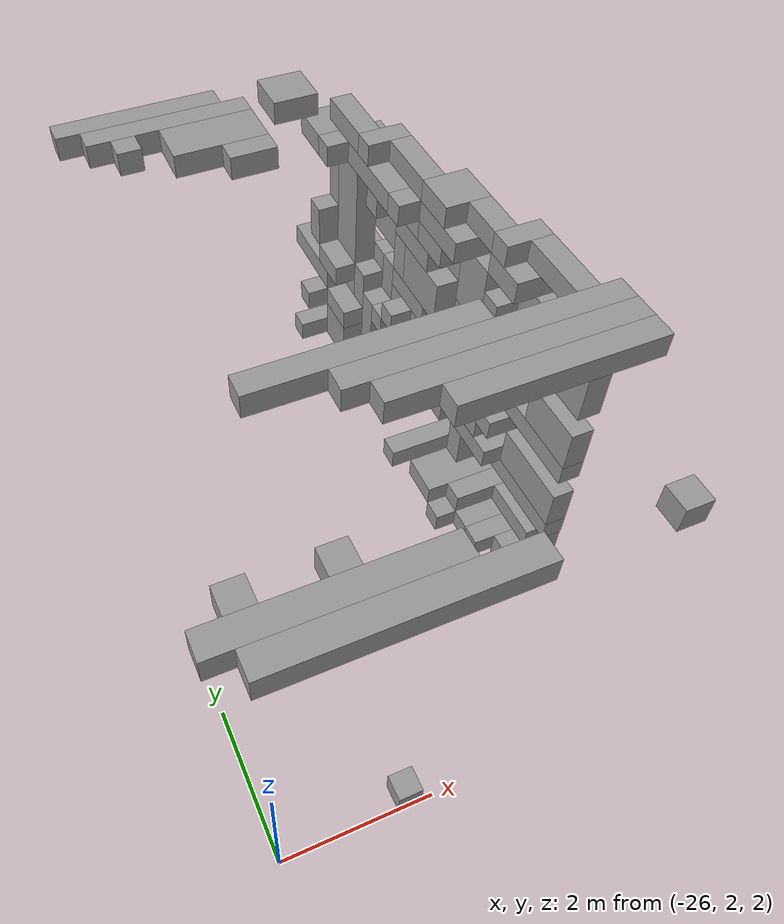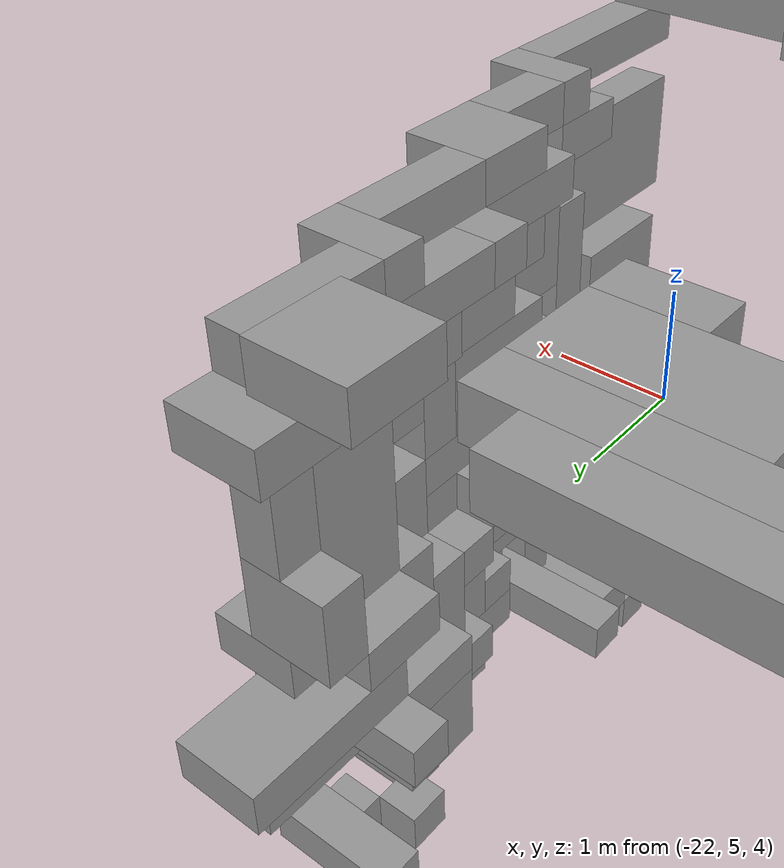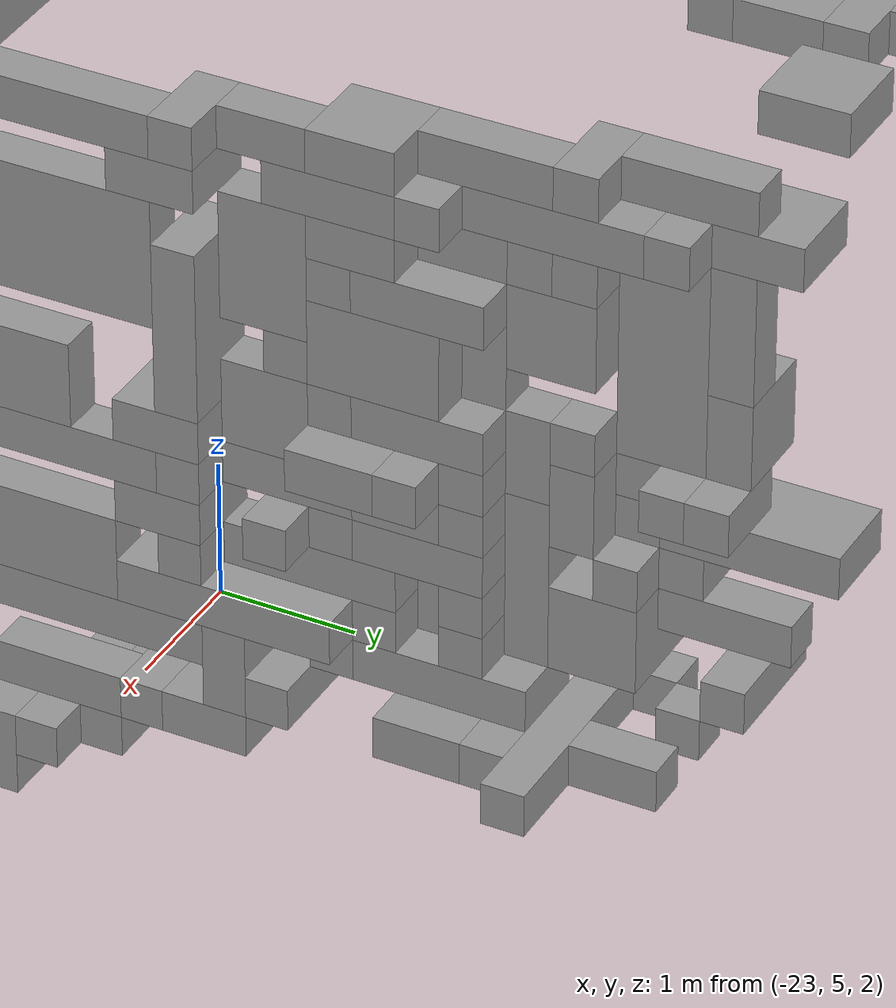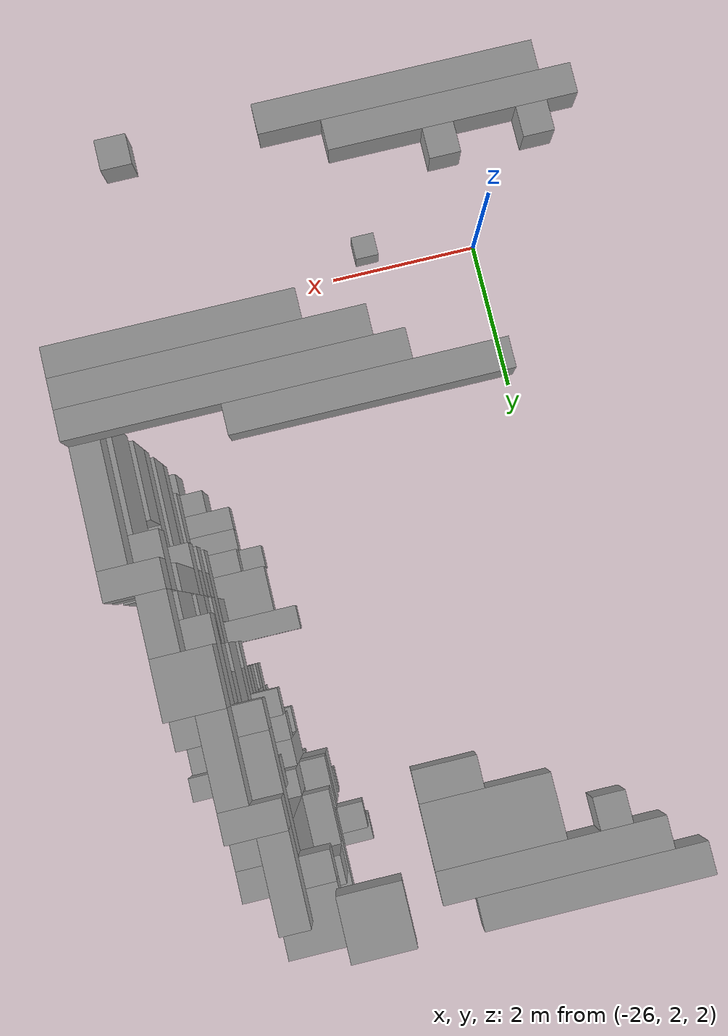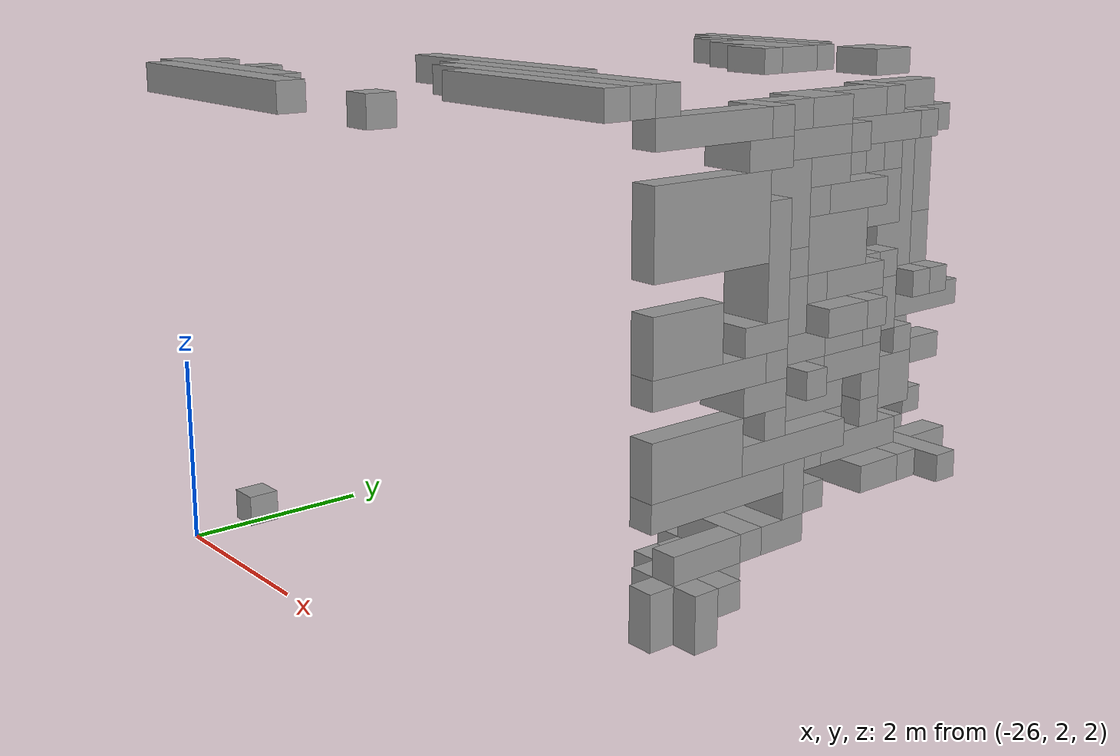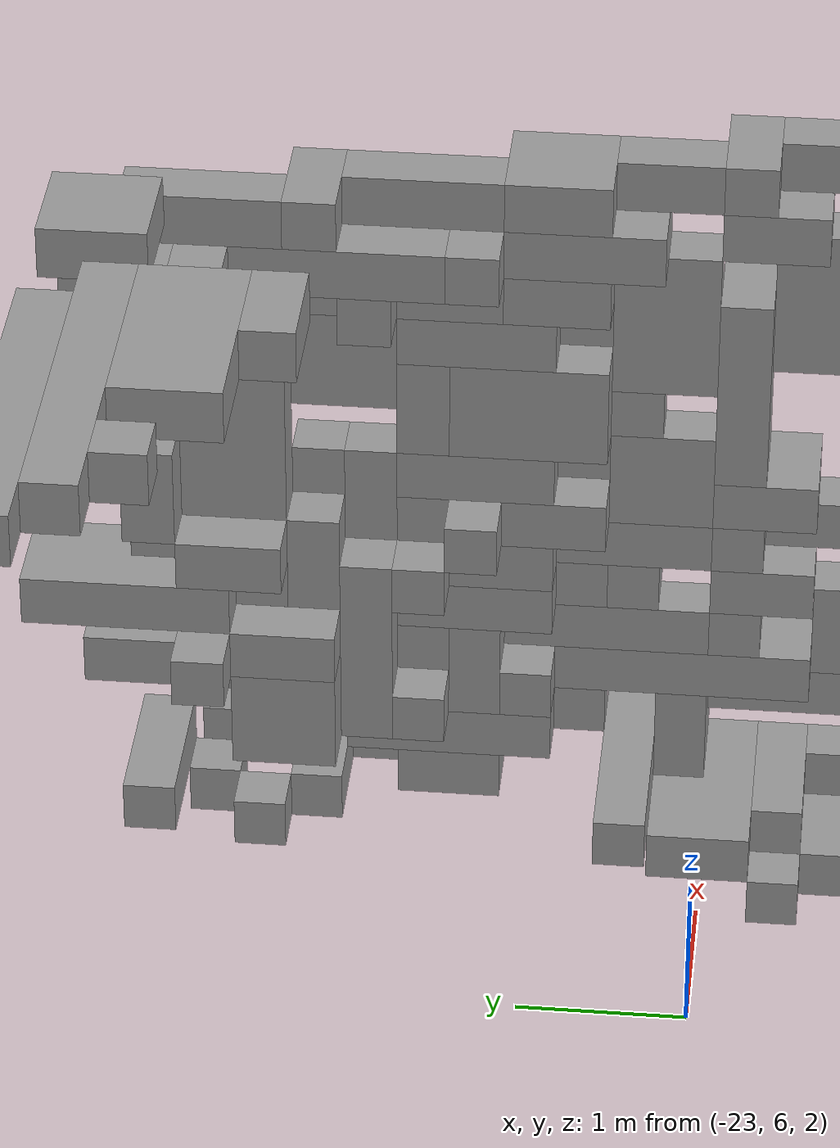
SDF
<sdf version="1.6">
 <world name="bt_world">
  <include><uri>model://sun</uri></include>
  <model name="obstacle_201">
   <static>true</static>
   <pose>-25.2 2.25 7.05 0 0 0</pose>
   <link name="link">
    <collision name="collision"><geometry><box><size>2.4 0.3 0.3</size></box></geometry></collision>
    <visual name="visual">
     <geometry><box><size>2.4 0.3 0.3</size></box></geometry>
     <material><ambient>0.5 0.5 0.5 1</ambient><diffuse>0.6 0.6 0.6 1</diffuse></material>
    </visual>
   </link>
  </model>
  <model name="obstacle_216">
   <static>true</static>
   <pose>-24.75 1.95 7.05 0 0 0</pose>
   <link name="link">
    <collision name="collision">
     <geometry><box><size>2.6999999999999997 0.3 0.3</size></box></geometry>
    </collision>
    <visual name="visual">
     <geometry><box><size>2.6999999999999997 0.3 0.3</size></box></geometry>
     <material><ambient>0.5 0.5 0.5 1</ambient><diffuse>0.6 0.6 0.6 1</diffuse></material>
    </visual>
   </link>
  </model>
  <model name="obstacle_217">
   <static>true</static>
   <pose>-25.95 2.55 7.05 0 0 0</pose>
   <link name="link">
    <collision name="collision"><geometry><box><size>0.3 0.3 0.3</size></box></geometry></collision>
    <visual name="visual">
     <geometry><box><size>0.3 0.3 0.3</size></box></geometry>
     <material><ambient>0.5 0.5 0.5 1</ambient><diffuse>0.6 0.6 0.6 1</diffuse></material>
    </visual>
   </link>
  </model>
  <model name="obstacle_228">
   <static>true</static>
   <pose>-24.75 9.45 7.05 0 0 0</pose>
   <link name="link">
    <collision name="collision"><geometry><box><size>2.1 0.3 0.3</size></box></geometry></collision>
    <visual name="visual">
     <geometry><box><size>2.1 0.3 0.3</size></box></geometry>
     <material><ambient>0.5 0.5 0.5 1</ambient><diffuse>0.6 0.6 0.6 1</diffuse></material>
    </visual>
   </link>
  </model>
  <model name="obstacle_242">
   <static>true</static>
   <pose>-24.45 9.15 7.05 0 0 0</pose>
   <link name="link">
    <collision name="collision"><geometry><box><size>2.1 0.3 0.3</size></box></geometry></collision>
    <visual name="visual">
     <geometry><box><size>2.1 0.3 0.3</size></box></geometry>
     <material><ambient>0.5 0.5 0.5 1</ambient><diffuse>0.6 0.6 0.6 1</diffuse></material>
    </visual>
   </link>
  </model>
  <model name="obstacle_268">
   <static>true</static>
   <pose>-25.05 2.55 7.05 0 0 0</pose>
   <link name="link">
    <collision name="collision"><geometry><box><size>0.3 0.3 0.3</size></box></geometry></collision>
    <visual name="visual">
     <geometry><box><size>0.3 0.3 0.3</size></box></geometry>
     <material><ambient>0.5 0.5 0.5 1</ambient><diffuse>0.6 0.6 0.6 1</diffuse></material>
    </visual>
   </link>
  </model>
  <model name="obstacle_269">
   <static>true</static>
   <pose>-23.849999999999998 4.6499999999999995 7.05 0 0 0</pose>
   <link name="link">
    <collision name="collision">
     <geometry><box><size>2.6999999999999997 0.3 0.3</size></box></geometry>
    </collision>
    <visual name="visual">
     <geometry><box><size>2.6999999999999997 0.3 0.3</size></box></geometry>
     <material><ambient>0.5 0.5 0.5 1</ambient><diffuse>0.6 0.6 0.6 1</diffuse></material>
    </visual>
   </link>
  </model>
  <model name="obstacle_270">
   <static>true</static>
   <pose>-25.05 8.85 7.05 0 0 0</pose>
   <link name="link">
    <collision name="collision"><geometry><box><size>0.3 0.3 0.3</size></box></geometry></collision>
    <visual name="visual">
     <geometry><box><size>0.3 0.3 0.3</size></box></geometry>
     <material><ambient>0.5 0.5 0.5 1</ambient><diffuse>0.6 0.6 0.6 1</diffuse></material>
    </visual>
   </link>
  </model>
  <model name="obstacle_354">
   <static>true</static>
   <pose>-24.45 1.95 2.85 0 0 0</pose>
   <link name="link">
    <collision name="collision"><geometry><box><size>0.3 0.3 0.3</size></box></geometry></collision>
    <visual name="visual">
     <geometry><box><size>0.3 0.3 0.3</size></box></geometry>
     <material><ambient>0.5 0.5 0.5 1</ambient><diffuse>0.6 0.6 0.6 1</diffuse></material>
    </visual>
   </link>
  </model>
  <model name="obstacle_355">
   <static>true</static>
   <pose>-24.0 8.7 7.05 0 0 0</pose>
   <link name="link">
    <collision name="collision"><geometry><box><size>1.2 0.6 0.3</size></box></geometry></collision>
    <visual name="visual">
     <geometry><box><size>1.2 0.6 0.3</size></box></geometry>
     <material><ambient>0.5 0.5 0.5 1</ambient><diffuse>0.6 0.6 0.6 1</diffuse></material>
    </visual>
   </link>
  </model>
  <model name="obstacle_390">
   <static>true</static>
   <pose>-22.65 4.35 7.05 0 0 0</pose>
   <link name="link">
    <collision name="collision"><geometry><box><size>3.3 0.3 0.3</size></box></geometry></collision>
    <visual name="visual">
     <geometry><box><size>3.3 0.3 0.3</size></box></geometry>
     <material><ambient>0.5 0.5 0.5 1</ambient><diffuse>0.6 0.6 0.6 1</diffuse></material>
    </visual>
   </link>
  </model>
  <model name="obstacle_416">
   <static>true</static>
   <pose>-22.5 4.05 7.05 0 0 0</pose>
   <link name="link">
    <collision name="collision"><geometry><box><size>3.0 0.3 0.3</size></box></geometry></collision>
    <visual name="visual">
     <geometry><box><size>3.0 0.3 0.3</size></box></geometry>
     <material><ambient>0.5 0.5 0.5 1</ambient><diffuse>0.6 0.6 0.6 1</diffuse></material>
    </visual>
   </link>
  </model>
  <model name="obstacle_417">
   <static>true</static>
   <pose>-23.7 8.25 7.05 0 0 0</pose>
   <link name="link">
    <collision name="collision"><geometry><box><size>0.6 0.3 0.3</size></box></geometry></collision>
    <visual name="visual">
     <geometry><box><size>0.6 0.3 0.3</size></box></geometry>
     <material><ambient>0.5 0.5 0.5 1</ambient><diffuse>0.6 0.6 0.6 1</diffuse></material>
    </visual>
   </link>
  </model>
  <model name="obstacle_484">
   <static>true</static>
   <pose>-22.2 3.75 7.05 0 0 0</pose>
   <link name="link">
    <collision name="collision"><geometry><box><size>2.4 0.3 0.3</size></box></geometry></collision>
    <visual name="visual">
     <geometry><box><size>2.4 0.3 0.3</size></box></geometry>
     <material><ambient>0.5 0.5 0.5 1</ambient><diffuse>0.6 0.6 0.6 1</diffuse></material>
    </visual>
   </link>
  </model>
  <model name="obstacle_511">
   <static>true</static>
   <pose>-22.8 9.299999999999999 7.05 0 0 0</pose>
   <link name="link">
    <collision name="collision"><geometry><box><size>0.6 0.6 0.3</size></box></geometry></collision>
    <visual name="visual">
     <geometry><box><size>0.6 0.6 0.3</size></box></geometry>
     <material><ambient>0.5 0.5 0.5 1</ambient><diffuse>0.6 0.6 0.6 1</diffuse></material>
    </visual>
   </link>
  </model>
  <model name="obstacle_537">
   <static>true</static>
   <pose>-22.349999999999998 8.85 4.05 0 0 0</pose>
   <link name="link">
    <collision name="collision">
     <geometry><box><size>0.8999999999999999 0.3 0.3</size></box></geometry>
    </collision>
    <visual name="visual">
     <geometry><box><size>0.8999999999999999 0.3 0.3</size></box></geometry>
     <material><ambient>0.5 0.5 0.5 1</ambient><diffuse>0.6 0.6 0.6 1</diffuse></material>
    </visual>
   </link>
  </model>
  <model name="obstacle_538">
   <static>true</static>
   <pose>-22.349999999999998 9.15 3.15 0 0 0</pose>
   <link name="link">
    <collision name="collision">
     <geometry><box><size>0.8999999999999999 0.3 0.3</size></box></geometry>
    </collision>
    <visual name="visual">
     <geometry><box><size>0.8999999999999999 0.3 0.3</size></box></geometry>
     <material><ambient>0.5 0.5 0.5 1</ambient><diffuse>0.6 0.6 0.6 1</diffuse></material>
    </visual>
   </link>
  </model>
  <model name="obstacle_569">
   <static>true</static>
   <pose>-21.75 6.45 2.85 0 0 0</pose>
   <link name="link">
    <collision name="collision"><geometry><box><size>1.5 0.3 0.3</size></box></geometry></collision>
    <visual name="visual">
     <geometry><box><size>1.5 0.3 0.3</size></box></geometry>
     <material><ambient>0.5 0.5 0.5 1</ambient><diffuse>0.6 0.6 0.6 1</diffuse></material>
    </visual>
   </link>
  </model>
  <model name="obstacle_571">
   <static>true</static>
   <pose>-22.05 8.4 3.5999999999999996 0 0 0</pose>
   <link name="link">
    <collision name="collision">
     <geometry><box><size>0.8999999999999999 0.6 0.6</size></box></geometry>
    </collision>
    <visual name="visual">
     <geometry><box><size>0.8999999999999999 0.6 0.6</size></box></geometry>
     <material><ambient>0.5 0.5 0.5 1</ambient><diffuse>0.6 0.6 0.6 1</diffuse></material>
    </visual>
   </link>
  </model>
  <model name="obstacle_572">
   <static>true</static>
   <pose>-22.349999999999998 8.4 4.05 0 0 0</pose>
   <link name="link">
    <collision name="collision"><geometry><box><size>0.3 0.6 0.3</size></box></geometry></collision>
    <visual name="visual">
     <geometry><box><size>0.3 0.6 0.3</size></box></geometry>
     <material><ambient>0.5 0.5 0.5 1</ambient><diffuse>0.6 0.6 0.6 1</diffuse></material>
    </visual>
   </link>
  </model>
  <model name="obstacle_573">
   <static>true</static>
   <pose>-22.349999999999998 8.549999999999999 2.85 0 0 0</pose>
   <link name="link">
    <collision name="collision"><geometry><box><size>0.3 0.3 0.3</size></box></geometry></collision>
    <visual name="visual">
     <geometry><box><size>0.3 0.3 0.3</size></box></geometry>
     <material><ambient>0.5 0.5 0.5 1</ambient><diffuse>0.6 0.6 0.6 1</diffuse></material>
    </visual>
   </link>
  </model>
  <model name="obstacle_574">
   <static>true</static>
   <pose>-22.2 8.7 4.6499999999999995 0 0 0</pose>
   <link name="link">
    <collision name="collision"><geometry><box><size>0.6 0.6 0.3</size></box></geometry></collision>
    <visual name="visual">
     <geometry><box><size>0.6 0.6 0.3</size></box></geometry>
     <material><ambient>0.5 0.5 0.5 1</ambient><diffuse>0.6 0.6 0.6 1</diffuse></material>
    </visual>
   </link>
  </model>
  <model name="obstacle_575">
   <static>true</static>
   <pose>-22.2 9.299999999999999 4.35 0 0 0</pose>
   <link name="link">
    <collision name="collision"><geometry><box><size>0.6 1.2 0.3</size></box></geometry></collision>
    <visual name="visual">
     <geometry><box><size>0.6 1.2 0.3</size></box></geometry>
     <material><ambient>0.5 0.5 0.5 1</ambient><diffuse>0.6 0.6 0.6 1</diffuse></material>
    </visual>
   </link>
  </model>
  <model name="obstacle_576">
   <static>true</static>
   <pose>-22.05 8.85 6.45 0 0 0</pose>
   <link name="link">
    <collision name="collision">
     <geometry><box><size>0.8999999999999999 0.3 0.3</size></box></geometry>
    </collision>
    <visual name="visual">
     <geometry><box><size>0.8999999999999999 0.3 0.3</size></box></geometry>
     <material><ambient>0.5 0.5 0.5 1</ambient><diffuse>0.6 0.6 0.6 1</diffuse></material>
    </visual>
   </link>
  </model>
  <model name="obstacle_578">
   <static>true</static>
   <pose>-22.2 9.15 5.1 0 0 0</pose>
   <link name="link">
    <collision name="collision"><geometry><box><size>0.6 0.3 0.6</size></box></geometry></collision>
    <visual name="visual">
     <geometry><box><size>0.6 0.3 0.6</size></box></geometry>
     <material><ambient>0.5 0.5 0.5 1</ambient><diffuse>0.6 0.6 0.6 1</diffuse></material>
    </visual>
   </link>
  </model>
  <model name="obstacle_579">
   <static>true</static>
   <pose>-22.2 9.299999999999999 6.45 0 0 0</pose>
   <link name="link">
    <collision name="collision"><geometry><box><size>0.6 0.6 0.3</size></box></geometry></collision>
    <visual name="visual">
     <geometry><box><size>0.6 0.6 0.3</size></box></geometry>
     <material><ambient>0.5 0.5 0.5 1</ambient><diffuse>0.6 0.6 0.6 1</diffuse></material>
    </visual>
   </link>
  </model>
  <model name="obstacle_616">
   <static>true</static>
   <pose>-22.05 1.95 7.05 0 0 0</pose>
   <link name="link">
    <collision name="collision"><geometry><box><size>0.3 0.3 0.3</size></box></geometry></collision>
    <visual name="visual">
     <geometry><box><size>0.3 0.3 0.3</size></box></geometry>
     <material><ambient>0.5 0.5 0.5 1</ambient><diffuse>0.6 0.6 0.6 1</diffuse></material>
    </visual>
   </link>
  </model>
  <model name="obstacle_618">
   <static>true</static>
   <pose>-22.05 5.55 2.25 0 0 0</pose>
   <link name="link">
    <collision name="collision"><geometry><box><size>0.3 0.3 0.3</size></box></geometry></collision>
    <visual name="visual">
     <geometry><box><size>0.3 0.3 0.3</size></box></geometry>
     <material><ambient>0.5 0.5 0.5 1</ambient><diffuse>0.6 0.6 0.6 1</diffuse></material>
    </visual>
   </link>
  </model>
  <model name="obstacle_619">
   <static>true</static>
   <pose>-21.599999999999998 6.0 2.55 0 0 0</pose>
   <link name="link">
    <collision name="collision"><geometry><box><size>1.2 0.6 0.3</size></box></geometry></collision>
    <visual name="visual">
     <geometry><box><size>1.2 0.6 0.3</size></box></geometry>
     <material><ambient>0.5 0.5 0.5 1</ambient><diffuse>0.6 0.6 0.6 1</diffuse></material>
    </visual>
   </link>
  </model>
  <model name="obstacle_622">
   <static>true</static>
   <pose>-21.599999999999998 7.35 4.6499999999999995 0 0 0</pose>
   <link name="link">
    <collision name="collision"><geometry><box><size>1.2 0.3 0.3</size></box></geometry></collision>
    <visual name="visual">
     <geometry><box><size>1.2 0.3 0.3</size></box></geometry>
     <material><ambient>0.5 0.5 0.5 1</ambient><diffuse>0.6 0.6 0.6 1</diffuse></material>
    </visual>
   </link>
  </model>
  <model name="obstacle_623">
   <static>true</static>
   <pose>-21.75 7.35 6.45 0 0 0</pose>
   <link name="link">
    <collision name="collision">
     <geometry><box><size>0.8999999999999999 0.3 0.3</size></box></geometry>
    </collision>
    <visual name="visual">
     <geometry><box><size>0.8999999999999999 0.3 0.3</size></box></geometry>
     <material><ambient>0.5 0.5 0.5 1</ambient><diffuse>0.6 0.6 0.6 1</diffuse></material>
    </visual>
   </link>
  </model>
  <model name="obstacle_624">
   <static>true</static>
   <pose>-21.75 7.6499999999999995 3.4499999999999997 0 0 0</pose>
   <link name="link">
    <collision name="collision">
     <geometry><box><size>0.8999999999999999 0.3 0.3</size></box></geometry>
    </collision>
    <visual name="visual">
     <geometry><box><size>0.8999999999999999 0.3 0.3</size></box></geometry>
     <material><ambient>0.5 0.5 0.5 1</ambient><diffuse>0.6 0.6 0.6 1</diffuse></material>
    </visual>
   </link>
  </model>
  <model name="obstacle_625">
   <static>true</static>
   <pose>-21.75 7.6499999999999995 4.35 0 0 0</pose>
   <link name="link">
    <collision name="collision">
     <geometry><box><size>0.8999999999999999 0.3 0.3</size></box></geometry>
    </collision>
    <visual name="visual">
     <geometry><box><size>0.8999999999999999 0.3 0.3</size></box></geometry>
     <material><ambient>0.5 0.5 0.5 1</ambient><diffuse>0.6 0.6 0.6 1</diffuse></material>
    </visual>
   </link>
  </model>
  <model name="obstacle_626">
   <static>true</static>
   <pose>-21.9 8.1 6.45 0 0 0</pose>
   <link name="link">
    <collision name="collision"><geometry><box><size>0.6 1.2 0.3</size></box></geometry></collision>
    <visual name="visual">
     <geometry><box><size>0.6 1.2 0.3</size></box></geometry>
     <material><ambient>0.5 0.5 0.5 1</ambient><diffuse>0.6 0.6 0.6 1</diffuse></material>
    </visual>
   </link>
  </model>
  <model name="obstacle_627">
   <static>true</static>
   <pose>-21.9 7.949999999999999 3.9 0 0 0</pose>
   <link name="link">
    <collision name="collision"><geometry><box><size>0.6 0.3 1.2</size></box></geometry></collision>
    <visual name="visual">
     <geometry><box><size>0.6 0.3 1.2</size></box></geometry>
     <material><ambient>0.5 0.5 0.5 1</ambient><diffuse>0.6 0.6 0.6 1</diffuse></material>
    </visual>
   </link>
  </model>
  <model name="obstacle_628">
   <static>true</static>
   <pose>-21.9 7.949999999999999 6.1499999999999995 0 0 0</pose>
   <link name="link">
    <collision name="collision"><geometry><box><size>0.6 0.3 0.3</size></box></geometry></collision>
    <visual name="visual">
     <geometry><box><size>0.6 0.3 0.3</size></box></geometry>
     <material><ambient>0.5 0.5 0.5 1</ambient><diffuse>0.6 0.6 0.6 1</diffuse></material>
    </visual>
   </link>
  </model>
  <model name="obstacle_629">
   <static>true</static>
   <pose>-21.45 8.25 2.85 0 0 0</pose>
   <link name="link">
    <collision name="collision"><geometry><box><size>1.5 0.3 0.3</size></box></geometry></collision>
    <visual name="visual">
     <geometry><box><size>1.5 0.3 0.3</size></box></geometry>
     <material><ambient>0.5 0.5 0.5 1</ambient><diffuse>0.6 0.6 0.6 1</diffuse></material>
    </visual>
   </link>
  </model>
  <model name="obstacle_630">
   <static>true</static>
   <pose>-21.9 8.25 4.5 0 0 0</pose>
   <link name="link">
    <collision name="collision"><geometry><box><size>0.6 0.3 0.6</size></box></geometry></collision>
    <visual name="visual">
     <geometry><box><size>0.6 0.3 0.6</size></box></geometry>
     <material><ambient>0.5 0.5 0.5 1</ambient><diffuse>0.6 0.6 0.6 1</diffuse></material>
    </visual>
   </link>
  </model>
  <model name="obstacle_631">
   <static>true</static>
   <pose>-21.9 8.25 6.75 0 0 0</pose>
   <link name="link">
    <collision name="collision"><geometry><box><size>0.6 0.3 0.3</size></box></geometry></collision>
    <visual name="visual">
     <geometry><box><size>0.6 0.3 0.3</size></box></geometry>
     <material><ambient>0.5 0.5 0.5 1</ambient><diffuse>0.6 0.6 0.6 1</diffuse></material>
    </visual>
   </link>
  </model>
  <model name="obstacle_632">
   <static>true</static>
   <pose>-21.9 8.549999999999999 4.05 0 0 0</pose>
   <link name="link">
    <collision name="collision"><geometry><box><size>0.6 0.3 0.3</size></box></geometry></collision>
    <visual name="visual">
     <geometry><box><size>0.6 0.3 0.3</size></box></geometry>
     <material><ambient>0.5 0.5 0.5 1</ambient><diffuse>0.6 0.6 0.6 1</diffuse></material>
    </visual>
   </link>
  </model>
  <model name="obstacle_633">
   <static>true</static>
   <pose>-22.05 8.549999999999999 4.35 0 0 0</pose>
   <link name="link">
    <collision name="collision"><geometry><box><size>0.3 0.3 0.3</size></box></geometry></collision>
    <visual name="visual">
     <geometry><box><size>0.3 0.3 0.3</size></box></geometry>
     <material><ambient>0.5 0.5 0.5 1</ambient><diffuse>0.6 0.6 0.6 1</diffuse></material>
    </visual>
   </link>
  </model>
  <model name="obstacle_634">
   <static>true</static>
   <pose>-22.05 8.7 5.55 0 0 0</pose>
   <link name="link">
    <collision name="collision"><geometry><box><size>0.3 0.6 1.5</size></box></geometry></collision>
    <visual name="visual">
     <geometry><box><size>0.3 0.6 1.5</size></box></geometry>
     <material><ambient>0.5 0.5 0.5 1</ambient><diffuse>0.6 0.6 0.6 1</diffuse></material>
    </visual>
   </link>
  </model>
  <model name="obstacle_635">
   <static>true</static>
   <pose>-22.05 8.85 6.75 0 0 0</pose>
   <link name="link">
    <collision name="collision">
     <geometry><box><size>0.3 0.8999999999999999 0.3</size></box></geometry>
    </collision>
    <visual name="visual">
     <geometry><box><size>0.3 0.8999999999999999 0.3</size></box></geometry>
     <material><ambient>0.5 0.5 0.5 1</ambient><diffuse>0.6 0.6 0.6 1</diffuse></material>
    </visual>
   </link>
  </model>
  <model name="obstacle_636">
   <static>true</static>
   <pose>-22.05 8.85 2.85 0 0 0</pose>
   <link name="link">
    <collision name="collision"><geometry><box><size>0.3 0.3 0.3</size></box></geometry></collision>
    <visual name="visual">
     <geometry><box><size>0.3 0.3 0.3</size></box></geometry>
     <material><ambient>0.5 0.5 0.5 1</ambient><diffuse>0.6 0.6 0.6 1</diffuse></material>
    </visual>
   </link>
  </model>
  <model name="obstacle_637">
   <static>true</static>
   <pose>-22.05 9.15 3.75 0 0 0</pose>
   <link name="link">
    <collision name="collision">
     <geometry><box><size>0.3 0.8999999999999999 0.3</size></box></geometry>
    </collision>
    <visual name="visual">
     <geometry><box><size>0.3 0.8999999999999999 0.3</size></box></geometry>
     <material><ambient>0.5 0.5 0.5 1</ambient><diffuse>0.6 0.6 0.6 1</diffuse></material>
    </visual>
   </link>
  </model>
  <model name="obstacle_639">
   <static>true</static>
   <pose>-21.9 9.15 4.6499999999999995 0 0 0</pose>
   <link name="link">
    <collision name="collision"><geometry><box><size>0.6 0.3 0.3</size></box></geometry></collision>
    <visual name="visual">
     <geometry><box><size>0.6 0.3 0.3</size></box></geometry>
     <material><ambient>0.5 0.5 0.5 1</ambient><diffuse>0.6 0.6 0.6 1</diffuse></material>
    </visual>
   </link>
  </model>
  <model name="obstacle_640">
   <static>true</static>
   <pose>-22.05 9.15 5.85 0 0 0</pose>
   <link name="link">
    <collision name="collision">
     <geometry><box><size>0.3 0.3 0.8999999999999999</size></box></geometry>
    </collision>
    <visual name="visual">
     <geometry><box><size>0.3 0.3 0.8999999999999999</size></box></geometry>
     <material><ambient>0.5 0.5 0.5 1</ambient><diffuse>0.6 0.6 0.6 1</diffuse></material>
    </visual>
   </link>
  </model>
  <model name="obstacle_669">
   <static>true</static>
   <pose>-21.3 4.95 2.25 0 0 0</pose>
   <link name="link">
    <collision name="collision"><geometry><box><size>1.2 0.3 0.3</size></box></geometry></collision>
    <visual name="visual">
     <geometry><box><size>1.2 0.3 0.3</size></box></geometry>
     <material><ambient>0.5 0.5 0.5 1</ambient><diffuse>0.6 0.6 0.6 1</diffuse></material>
    </visual>
   </link>
  </model>
  <model name="obstacle_670">
   <static>true</static>
   <pose>-21.45 5.25 2.25 0 0 0</pose>
   <link name="link">
    <collision name="collision">
     <geometry><box><size>0.8999999999999999 0.3 0.3</size></box></geometry>
    </collision>
    <visual name="visual">
     <geometry><box><size>0.8999999999999999 0.3 0.3</size></box></geometry>
     <material><ambient>0.5 0.5 0.5 1</ambient><diffuse>0.6 0.6 0.6 1</diffuse></material>
    </visual>
   </link>
  </model>
  <model name="obstacle_672">
   <static>true</static>
   <pose>-21.45 5.55 2.55 0 0 0</pose>
   <link name="link">
    <collision name="collision">
     <geometry><box><size>0.8999999999999999 0.3 0.3</size></box></geometry>
    </collision>
    <visual name="visual">
     <geometry><box><size>0.8999999999999999 0.3 0.3</size></box></geometry>
     <material><ambient>0.5 0.5 0.5 1</ambient><diffuse>0.6 0.6 0.6 1</diffuse></material>
    </visual>
   </link>
  </model>
  <model name="obstacle_675">
   <static>true</static>
   <pose>-21.599999999999998 6.75 6.45 0 0 0</pose>
   <link name="link">
    <collision name="collision">
     <geometry><box><size>0.6 0.8999999999999999 0.3</size></box></geometry>
    </collision>
    <visual name="visual">
     <geometry><box><size>0.6 0.8999999999999999 0.3</size></box></geometry>
     <material><ambient>0.5 0.5 0.5 1</ambient><diffuse>0.6 0.6 0.6 1</diffuse></material>
    </visual>
   </link>
  </model>
  <model name="obstacle_677">
   <static>true</static>
   <pose>-21.45 6.8999999999999995 4.6499999999999995 0 0 0</pose>
   <link name="link">
    <collision name="collision">
     <geometry><box><size>0.8999999999999999 0.6 0.3</size></box></geometry>
    </collision>
    <visual name="visual">
     <geometry><box><size>0.8999999999999999 0.6 0.3</size></box></geometry>
     <material><ambient>0.5 0.5 0.5 1</ambient><diffuse>0.6 0.6 0.6 1</diffuse></material>
    </visual>
   </link>
  </model>
  <model name="obstacle_678">
   <static>true</static>
   <pose>-21.599999999999998 7.05 5.3999999999999995 0 0 0</pose>
   <link name="link">
    <collision name="collision">
     <geometry><box><size>0.6 0.8999999999999999 0.6</size></box></geometry>
    </collision>
    <visual name="visual">
     <geometry><box><size>0.6 0.8999999999999999 0.6</size></box></geometry>
     <material><ambient>0.5 0.5 0.5 1</ambient><diffuse>0.6 0.6 0.6 1</diffuse></material>
    </visual>
   </link>
  </model>
  <model name="obstacle_679">
   <static>true</static>
   <pose>-21.599999999999998 6.8999999999999995 6.1499999999999995 0 0 0</pose>
   <link name="link">
    <collision name="collision"><geometry><box><size>0.6 0.6 0.3</size></box></geometry></collision>
    <visual name="visual">
     <geometry><box><size>0.6 0.6 0.3</size></box></geometry>
     <material><ambient>0.5 0.5 0.5 1</ambient><diffuse>0.6 0.6 0.6 1</diffuse></material>
    </visual>
   </link>
  </model>
  <model name="obstacle_680">
   <static>true</static>
   <pose>-21.599999999999998 6.8999999999999995 6.75 0 0 0</pose>
   <link name="link">
    <collision name="collision"><geometry><box><size>0.6 0.6 0.3</size></box></geometry></collision>
    <visual name="visual">
     <geometry><box><size>0.6 0.6 0.3</size></box></geometry>
     <material><ambient>0.5 0.5 0.5 1</ambient><diffuse>0.6 0.6 0.6 1</diffuse></material>
    </visual>
   </link>
  </model>
  <model name="obstacle_681">
   <static>true</static>
   <pose>-21.599999999999998 7.5 3.15 0 0 0</pose>
   <link name="link">
    <collision name="collision"><geometry><box><size>0.6 1.2 0.3</size></box></geometry></collision>
    <visual name="visual">
     <geometry><box><size>0.6 1.2 0.3</size></box></geometry>
     <material><ambient>0.5 0.5 0.5 1</ambient><diffuse>0.6 0.6 0.6 1</diffuse></material>
    </visual>
   </link>
  </model>
  <model name="obstacle_682">
   <static>true</static>
   <pose>-21.599999999999998 7.05 3.4499999999999997 0 0 0</pose>
   <link name="link">
    <collision name="collision"><geometry><box><size>0.6 0.3 0.3</size></box></geometry></collision>
    <visual name="visual">
     <geometry><box><size>0.6 0.3 0.3</size></box></geometry>
     <material><ambient>0.5 0.5 0.5 1</ambient><diffuse>0.6 0.6 0.6 1</diffuse></material>
    </visual>
   </link>
  </model>
  <model name="obstacle_683">
   <static>true</static>
   <pose>-21.599999999999998 7.35 4.05 0 0 0</pose>
   <link name="link">
    <collision name="collision">
     <geometry><box><size>0.6 0.8999999999999999 0.3</size></box></geometry>
    </collision>
    <visual name="visual">
     <geometry><box><size>0.6 0.8999999999999999 0.3</size></box></geometry>
     <material><ambient>0.5 0.5 0.5 1</ambient><diffuse>0.6 0.6 0.6 1</diffuse></material>
    </visual>
   </link>
  </model>
  <model name="obstacle_684">
   <static>true</static>
   <pose>-21.599999999999998 7.199999999999999 4.35 0 0 0</pose>
   <link name="link">
    <collision name="collision"><geometry><box><size>0.6 0.6 0.3</size></box></geometry></collision>
    <visual name="visual">
     <geometry><box><size>0.6 0.6 0.3</size></box></geometry>
     <material><ambient>0.5 0.5 0.5 1</ambient><diffuse>0.6 0.6 0.6 1</diffuse></material>
    </visual>
   </link>
  </model>
  <model name="obstacle_685">
   <static>true</static>
   <pose>-21.599999999999998 7.35 4.95 0 0 0</pose>
   <link name="link">
    <collision name="collision">
     <geometry><box><size>0.6 0.8999999999999999 0.3</size></box></geometry>
    </collision>
    <visual name="visual">
     <geometry><box><size>0.6 0.8999999999999999 0.3</size></box></geometry>
     <material><ambient>0.5 0.5 0.5 1</ambient><diffuse>0.6 0.6 0.6 1</diffuse></material>
    </visual>
   </link>
  </model>
  <model name="obstacle_686">
   <static>true</static>
   <pose>-21.599999999999998 7.35 5.85 0 0 0</pose>
   <link name="link">
    <collision name="collision">
     <geometry><box><size>0.6 0.8999999999999999 0.3</size></box></geometry>
    </collision>
    <visual name="visual">
     <geometry><box><size>0.6 0.8999999999999999 0.3</size></box></geometry>
     <material><ambient>0.5 0.5 0.5 1</ambient><diffuse>0.6 0.6 0.6 1</diffuse></material>
    </visual>
   </link>
  </model>
  <model name="obstacle_687">
   <static>true</static>
   <pose>-21.45 7.5 2.85 0 0 0</pose>
   <link name="link">
    <collision name="collision">
     <geometry><box><size>0.8999999999999999 0.6 0.3</size></box></geometry>
    </collision>
    <visual name="visual">
     <geometry><box><size>0.8999999999999999 0.6 0.3</size></box></geometry>
     <material><ambient>0.5 0.5 0.5 1</ambient><diffuse>0.6 0.6 0.6 1</diffuse></material>
    </visual>
   </link>
  </model>
  <model name="obstacle_688">
   <static>true</static>
   <pose>-21.75 7.35 3.5999999999999996 0 0 0</pose>
   <link name="link">
    <collision name="collision"><geometry><box><size>0.3 0.3 0.6</size></box></geometry></collision>
    <visual name="visual">
     <geometry><box><size>0.3 0.3 0.6</size></box></geometry>
     <material><ambient>0.5 0.5 0.5 1</ambient><diffuse>0.6 0.6 0.6 1</diffuse></material>
    </visual>
   </link>
  </model>
  <model name="obstacle_689">
   <static>true</static>
   <pose>-21.75 7.5 6.1499999999999995 0 0 0</pose>
   <link name="link">
    <collision name="collision"><geometry><box><size>0.3 0.6 0.3</size></box></geometry></collision>
    <visual name="visual">
     <geometry><box><size>0.3 0.6 0.3</size></box></geometry>
     <material><ambient>0.5 0.5 0.5 1</ambient><diffuse>0.6 0.6 0.6 1</diffuse></material>
    </visual>
   </link>
  </model>
  <model name="obstacle_690">
   <static>true</static>
   <pose>-21.75 7.6499999999999995 6.75 0 0 0</pose>
   <link name="link">
    <collision name="collision">
     <geometry><box><size>0.3 0.8999999999999999 0.3</size></box></geometry>
    </collision>
    <visual name="visual">
     <geometry><box><size>0.3 0.8999999999999999 0.3</size></box></geometry>
     <material><ambient>0.5 0.5 0.5 1</ambient><diffuse>0.6 0.6 0.6 1</diffuse></material>
    </visual>
   </link>
  </model>
  <model name="obstacle_691">
   <static>true</static>
   <pose>-21.599999999999998 7.6499999999999995 3.75 0 0 0</pose>
   <link name="link">
    <collision name="collision"><geometry><box><size>0.6 0.3 0.3</size></box></geometry></collision>
    <visual name="visual">
     <geometry><box><size>0.6 0.3 0.3</size></box></geometry>
     <material><ambient>0.5 0.5 0.5 1</ambient><diffuse>0.6 0.6 0.6 1</diffuse></material>
    </visual>
   </link>
  </model>
  <model name="obstacle_692">
   <static>true</static>
   <pose>-21.599999999999998 7.6499999999999995 4.6499999999999995 0 0 0</pose>
   <link name="link">
    <collision name="collision"><geometry><box><size>0.6 0.3 0.3</size></box></geometry></collision>
    <visual name="visual">
     <geometry><box><size>0.6 0.3 0.3</size></box></geometry>
     <material><ambient>0.5 0.5 0.5 1</ambient><diffuse>0.6 0.6 0.6 1</diffuse></material>
    </visual>
   </link>
  </model>
  <model name="obstacle_693">
   <static>true</static>
   <pose>-21.75 7.6499999999999995 5.3999999999999995 0 0 0</pose>
   <link name="link">
    <collision name="collision"><geometry><box><size>0.3 0.3 0.6</size></box></geometry></collision>
    <visual name="visual">
     <geometry><box><size>0.3 0.3 0.6</size></box></geometry>
     <material><ambient>0.5 0.5 0.5 1</ambient><diffuse>0.6 0.6 0.6 1</diffuse></material>
    </visual>
   </link>
  </model>
  <model name="obstacle_694">
   <static>true</static>
   <pose>-21.75 7.949999999999999 4.8 0 0 0</pose>
   <link name="link">
    <collision name="collision"><geometry><box><size>0.3 0.3 0.6</size></box></geometry></collision>
    <visual name="visual">
     <geometry><box><size>0.3 0.3 0.6</size></box></geometry>
     <material><ambient>0.5 0.5 0.5 1</ambient><diffuse>0.6 0.6 0.6 1</diffuse></material>
    </visual>
   </link>
  </model>
  <model name="obstacle_695">
   <static>true</static>
   <pose>-21.75 8.1 5.7 0 0 0</pose>
   <link name="link">
    <collision name="collision"><geometry><box><size>0.3 0.6 0.6</size></box></geometry></collision>
    <visual name="visual">
     <geometry><box><size>0.3 0.6 0.6</size></box></geometry>
     <material><ambient>0.5 0.5 0.5 1</ambient><diffuse>0.6 0.6 0.6 1</diffuse></material>
    </visual>
   </link>
  </model>
  <model name="obstacle_696">
   <static>true</static>
   <pose>-21.75 8.25 4.95 0 0 0</pose>
   <link name="link">
    <collision name="collision"><geometry><box><size>0.3 0.3 0.3</size></box></geometry></collision>
    <visual name="visual">
     <geometry><box><size>0.3 0.3 0.3</size></box></geometry>
     <material><ambient>0.5 0.5 0.5 1</ambient><diffuse>0.6 0.6 0.6 1</diffuse></material>
    </visual>
   </link>
  </model>
  <model name="obstacle_697">
   <static>true</static>
   <pose>-21.75 8.25 6.1499999999999995 0 0 0</pose>
   <link name="link">
    <collision name="collision"><geometry><box><size>0.3 0.3 0.3</size></box></geometry></collision>
    <visual name="visual">
     <geometry><box><size>0.3 0.3 0.3</size></box></geometry>
     <material><ambient>0.5 0.5 0.5 1</ambient><diffuse>0.6 0.6 0.6 1</diffuse></material>
    </visual>
   </link>
  </model>
  <model name="obstacle_698">
   <static>true</static>
   <pose>-21.75 8.85 4.6499999999999995 0 0 0</pose>
   <link name="link">
    <collision name="collision"><geometry><box><size>0.3 0.3 0.3</size></box></geometry></collision>
    <visual name="visual">
     <geometry><box><size>0.3 0.3 0.3</size></box></geometry>
     <material><ambient>0.5 0.5 0.5 1</ambient><diffuse>0.6 0.6 0.6 1</diffuse></material>
    </visual>
   </link>
  </model>
  <model name="obstacle_711">
   <static>true</static>
   <pose>-21.15 4.6499999999999995 2.1 0 0 0</pose>
   <link name="link">
    <collision name="collision">
     <geometry><box><size>0.8999999999999999 0.3 0.6</size></box></geometry>
    </collision>
    <visual name="visual">
     <geometry><box><size>0.8999999999999999 0.3 0.6</size></box></geometry>
     <material><ambient>0.5 0.5 0.5 1</ambient><diffuse>0.6 0.6 0.6 1</diffuse></material>
    </visual>
   </link>
  </model>
  <model name="obstacle_715">
   <static>true</static>
   <pose>-21.3 6.1499999999999995 3.4499999999999997 0 0 0</pose>
   <link name="link">
    <collision name="collision"><geometry><box><size>0.6 1.5 0.3</size></box></geometry></collision>
    <visual name="visual">
     <geometry><box><size>0.6 1.5 0.3</size></box></geometry>
     <material><ambient>0.5 0.5 0.5 1</ambient><diffuse>0.6 0.6 0.6 1</diffuse></material>
    </visual>
   </link>
  </model>
  <model name="obstacle_716">
   <static>true</static>
   <pose>-21.3 5.7 4.05 0 0 0</pose>
   <link name="link">
    <collision name="collision"><geometry><box><size>0.6 0.6 0.3</size></box></geometry></collision>
    <visual name="visual">
     <geometry><box><size>0.6 0.6 0.3</size></box></geometry>
     <material><ambient>0.5 0.5 0.5 1</ambient><diffuse>0.6 0.6 0.6 1</diffuse></material>
    </visual>
   </link>
  </model>
  <model name="obstacle_717">
   <static>true</static>
   <pose>-21.3 5.7 4.6499999999999995 0 0 0</pose>
   <link name="link">
    <collision name="collision"><geometry><box><size>0.6 0.6 0.3</size></box></geometry></collision>
    <visual name="visual">
     <geometry><box><size>0.6 0.6 0.3</size></box></geometry>
     <material><ambient>0.5 0.5 0.5 1</ambient><diffuse>0.6 0.6 0.6 1</diffuse></material>
    </visual>
   </link>
  </model>
  <model name="obstacle_718">
   <static>true</static>
   <pose>-21.3 5.7 6.45 0 0 0</pose>
   <link name="link">
    <collision name="collision"><geometry><box><size>0.6 0.6 0.3</size></box></geometry></collision>
    <visual name="visual">
     <geometry><box><size>0.6 0.6 0.3</size></box></geometry>
     <material><ambient>0.5 0.5 0.5 1</ambient><diffuse>0.6 0.6 0.6 1</diffuse></material>
    </visual>
   </link>
  </model>
  <model name="obstacle_720">
   <static>true</static>
   <pose>-21.3 5.85 3.75 0 0 0</pose>
   <link name="link">
    <collision name="collision"><geometry><box><size>0.6 0.3 0.3</size></box></geometry></collision>
    <visual name="visual">
     <geometry><box><size>0.6 0.3 0.3</size></box></geometry>
     <material><ambient>0.5 0.5 0.5 1</ambient><diffuse>0.6 0.6 0.6 1</diffuse></material>
    </visual>
   </link>
  </model>
  <model name="obstacle_721">
   <static>true</static>
   <pose>-21.3 5.85 4.35 0 0 0</pose>
   <link name="link">
    <collision name="collision"><geometry><box><size>0.6 0.3 0.3</size></box></geometry></collision>
    <visual name="visual">
     <geometry><box><size>0.6 0.3 0.3</size></box></geometry>
     <material><ambient>0.5 0.5 0.5 1</ambient><diffuse>0.6 0.6 0.6 1</diffuse></material>
    </visual>
   </link>
  </model>
  <model name="obstacle_722">
   <static>true</static>
   <pose>-21.3 5.85 5.3999999999999995 0 0 0</pose>
   <link name="link">
    <collision name="collision"><geometry><box><size>0.6 0.3 1.2</size></box></geometry></collision>
    <visual name="visual">
     <geometry><box><size>0.6 0.3 1.2</size></box></geometry>
     <material><ambient>0.5 0.5 0.5 1</ambient><diffuse>0.6 0.6 0.6 1</diffuse></material>
    </visual>
   </link>
  </model>
  <model name="obstacle_723">
   <static>true</static>
   <pose>-21.3 5.85 6.75 0 0 0</pose>
   <link name="link">
    <collision name="collision"><geometry><box><size>0.6 0.3 0.3</size></box></geometry></collision>
    <visual name="visual">
     <geometry><box><size>0.6 0.3 0.3</size></box></geometry>
     <material><ambient>0.5 0.5 0.5 1</ambient><diffuse>0.6 0.6 0.6 1</diffuse></material>
    </visual>
   </link>
  </model>
  <model name="obstacle_724">
   <static>true</static>
   <pose>-21.3 6.1499999999999995 3.0 0 0 0</pose>
   <link name="link">
    <collision name="collision"><geometry><box><size>0.6 0.3 0.6</size></box></geometry></collision>
    <visual name="visual">
     <geometry><box><size>0.6 0.3 0.6</size></box></geometry>
     <material><ambient>0.5 0.5 0.5 1</ambient><diffuse>0.6 0.6 0.6 1</diffuse></material>
    </visual>
   </link>
  </model>
  <model name="obstacle_725">
   <static>true</static>
   <pose>-21.45 6.6 3.75 0 0 0</pose>
   <link name="link">
    <collision name="collision"><geometry><box><size>0.3 1.2 0.3</size></box></geometry></collision>
    <visual name="visual">
     <geometry><box><size>0.3 1.2 0.3</size></box></geometry>
     <material><ambient>0.5 0.5 0.5 1</ambient><diffuse>0.6 0.6 0.6 1</diffuse></material>
    </visual>
   </link>
  </model>
  <model name="obstacle_726">
   <static>true</static>
   <pose>-21.45 6.45 4.35 0 0 0</pose>
   <link name="link">
    <collision name="collision">
     <geometry><box><size>0.3 0.8999999999999999 0.3</size></box></geometry>
    </collision>
    <visual name="visual">
     <geometry><box><size>0.3 0.8999999999999999 0.3</size></box></geometry>
     <material><ambient>0.5 0.5 0.5 1</ambient><diffuse>0.6 0.6 0.6 1</diffuse></material>
    </visual>
   </link>
  </model>
  <model name="obstacle_727">
   <static>true</static>
   <pose>-21.45 6.3 4.8 0 0 0</pose>
   <link name="link">
    <collision name="collision"><geometry><box><size>0.3 0.6 0.6</size></box></geometry></collision>
    <visual name="visual">
     <geometry><box><size>0.3 0.6 0.6</size></box></geometry>
     <material><ambient>0.5 0.5 0.5 1</ambient><diffuse>0.6 0.6 0.6 1</diffuse></material>
    </visual>
   </link>
  </model>
  <model name="obstacle_728">
   <static>true</static>
   <pose>-21.45 6.3 5.85 0 0 0</pose>
   <link name="link">
    <collision name="collision">
     <geometry><box><size>0.3 0.6 0.8999999999999999</size></box></geometry>
    </collision>
    <visual name="visual">
     <geometry><box><size>0.3 0.6 0.8999999999999999</size></box></geometry>
     <material><ambient>0.5 0.5 0.5 1</ambient><diffuse>0.6 0.6 0.6 1</diffuse></material>
    </visual>
   </link>
  </model>
  <model name="obstacle_729">
   <static>true</static>
   <pose>-21.45 6.3 6.75 0 0 0</pose>
   <link name="link">
    <collision name="collision"><geometry><box><size>0.3 0.6 0.3</size></box></geometry></collision>
    <visual name="visual">
     <geometry><box><size>0.3 0.6 0.3</size></box></geometry>
     <material><ambient>0.5 0.5 0.5 1</ambient><diffuse>0.6 0.6 0.6 1</diffuse></material>
    </visual>
   </link>
  </model>
  <model name="obstacle_730">
   <static>true</static>
   <pose>-21.3 6.45 4.05 0 0 0</pose>
   <link name="link">
    <collision name="collision"><geometry><box><size>0.6 0.3 0.3</size></box></geometry></collision>
    <visual name="visual">
     <geometry><box><size>0.6 0.3 0.3</size></box></geometry>
     <material><ambient>0.5 0.5 0.5 1</ambient><diffuse>0.6 0.6 0.6 1</diffuse></material>
    </visual>
   </link>
  </model>
  <model name="obstacle_731">
   <static>true</static>
   <pose>-21.45 6.45 5.25 0 0 0</pose>
   <link name="link">
    <collision name="collision"><geometry><box><size>0.3 0.3 0.3</size></box></geometry></collision>
    <visual name="visual">
     <geometry><box><size>0.3 0.3 0.3</size></box></geometry>
     <material><ambient>0.5 0.5 0.5 1</ambient><diffuse>0.6 0.6 0.6 1</diffuse></material>
    </visual>
   </link>
  </model>
  <model name="obstacle_733">
   <static>true</static>
   <pose>-21.45 6.75 3.15 0 0 0</pose>
   <link name="link">
    <collision name="collision"><geometry><box><size>0.3 0.3 0.3</size></box></geometry></collision>
    <visual name="visual">
     <geometry><box><size>0.3 0.3 0.3</size></box></geometry>
     <material><ambient>0.5 0.5 0.5 1</ambient><diffuse>0.6 0.6 0.6 1</diffuse></material>
    </visual>
   </link>
  </model>
  <model name="obstacle_734">
   <static>true</static>
   <pose>-21.45 6.75 4.05 0 0 0</pose>
   <link name="link">
    <collision name="collision"><geometry><box><size>0.3 0.3 0.3</size></box></geometry></collision>
    <visual name="visual">
     <geometry><box><size>0.3 0.3 0.3</size></box></geometry>
     <material><ambient>0.5 0.5 0.5 1</ambient><diffuse>0.6 0.6 0.6 1</diffuse></material>
    </visual>
   </link>
  </model>
  <model name="obstacle_735">
   <static>true</static>
   <pose>-21.45 6.75 4.95 0 0 0</pose>
   <link name="link">
    <collision name="collision"><geometry><box><size>0.3 0.3 0.3</size></box></geometry></collision>
    <visual name="visual">
     <geometry><box><size>0.3 0.3 0.3</size></box></geometry>
     <material><ambient>0.5 0.5 0.5 1</ambient><diffuse>0.6 0.6 0.6 1</diffuse></material>
    </visual>
   </link>
  </model>
  <model name="obstacle_736">
   <static>true</static>
   <pose>-21.45 6.75 5.85 0 0 0</pose>
   <link name="link">
    <collision name="collision"><geometry><box><size>0.3 0.3 0.3</size></box></geometry></collision>
    <visual name="visual">
     <geometry><box><size>0.3 0.3 0.3</size></box></geometry>
     <material><ambient>0.5 0.5 0.5 1</ambient><diffuse>0.6 0.6 0.6 1</diffuse></material>
    </visual>
   </link>
  </model>
  <model name="obstacle_737">
   <static>true</static>
   <pose>-21.3 7.949999999999999 2.85 0 0 0</pose>
   <link name="link">
    <collision name="collision"><geometry><box><size>0.6 0.3 0.3</size></box></geometry></collision>
    <visual name="visual">
     <geometry><box><size>0.6 0.3 0.3</size></box></geometry>
     <material><ambient>0.5 0.5 0.5 1</ambient><diffuse>0.6 0.6 0.6 1</diffuse></material>
    </visual>
   </link>
  </model>
  <model name="obstacle_738">
   <static>true</static>
   <pose>-21.45 8.7 2.85 0 0 0</pose>
   <link name="link">
    <collision name="collision"><geometry><box><size>0.3 0.6 0.3</size></box></geometry></collision>
    <visual name="visual">
     <geometry><box><size>0.3 0.6 0.3</size></box></geometry>
     <material><ambient>0.5 0.5 0.5 1</ambient><diffuse>0.6 0.6 0.6 1</diffuse></material>
    </visual>
   </link>
  </model>
  <model name="obstacle_760">
   <static>true</static>
   <pose>-21.15 4.35 2.1 0 0 0</pose>
   <link name="link">
    <collision name="collision"><geometry><box><size>0.3 0.3 0.6</size></box></geometry></collision>
    <visual name="visual">
     <geometry><box><size>0.3 0.3 0.6</size></box></geometry>
     <material><ambient>0.5 0.5 0.5 1</ambient><diffuse>0.6 0.6 0.6 1</diffuse></material>
    </visual>
   </link>
  </model>
  <model name="obstacle_762">
   <static>true</static>
   <pose>-21.15 5.1 3.15 0 0 0</pose>
   <link name="link">
    <collision name="collision">
     <geometry><box><size>0.3 1.7999999999999998 0.3</size></box></geometry>
    </collision>
    <visual name="visual">
     <geometry><box><size>0.3 1.7999999999999998 0.3</size></box></geometry>
     <material><ambient>0.5 0.5 0.5 1</ambient><diffuse>0.6 0.6 0.6 1</diffuse></material>
    </visual>
   </link>
  </model>
  <model name="obstacle_763">
   <static>true</static>
   <pose>-21.15 4.8 3.5999999999999996 0 0 0</pose>
   <link name="link">
    <collision name="collision"><geometry><box><size>0.3 1.2 0.6</size></box></geometry></collision>
    <visual name="visual">
     <geometry><box><size>0.3 1.2 0.6</size></box></geometry>
     <material><ambient>0.5 0.5 0.5 1</ambient><diffuse>0.6 0.6 0.6 1</diffuse></material>
    </visual>
   </link>
  </model>
  <model name="obstacle_764">
   <static>true</static>
   <pose>-21.15 4.95 4.35 0 0 0</pose>
   <link name="link">
    <collision name="collision"><geometry><box><size>0.3 1.5 0.3</size></box></geometry></collision>
    <visual name="visual">
     <geometry><box><size>0.3 1.5 0.3</size></box></geometry>
     <material><ambient>0.5 0.5 0.5 1</ambient><diffuse>0.6 0.6 0.6 1</diffuse></material>
    </visual>
   </link>
  </model>
  <model name="obstacle_765">
   <static>true</static>
   <pose>-21.15 4.6499999999999995 4.8 0 0 0</pose>
   <link name="link">
    <collision name="collision">
     <geometry><box><size>0.3 0.8999999999999999 0.6</size></box></geometry>
    </collision>
    <visual name="visual">
     <geometry><box><size>0.3 0.8999999999999999 0.6</size></box></geometry>
     <material><ambient>0.5 0.5 0.5 1</ambient><diffuse>0.6 0.6 0.6 1</diffuse></material>
    </visual>
   </link>
  </model>
  <model name="obstacle_766">
   <static>true</static>
   <pose>-21.15 4.95 5.85 0 0 0</pose>
   <link name="link">
    <collision name="collision">
     <geometry><box><size>0.3 1.5 0.8999999999999999</size></box></geometry>
    </collision>
    <visual name="visual">
     <geometry><box><size>0.3 1.5 0.8999999999999999</size></box></geometry>
     <material><ambient>0.5 0.5 0.5 1</ambient><diffuse>0.6 0.6 0.6 1</diffuse></material>
    </visual>
   </link>
  </model>
  <model name="obstacle_767">
   <static>true</static>
   <pose>-21.15 4.95 6.75 0 0 0</pose>
   <link name="link">
    <collision name="collision"><geometry><box><size>0.3 1.5 0.3</size></box></geometry></collision>
    <visual name="visual">
     <geometry><box><size>0.3 1.5 0.3</size></box></geometry>
     <material><ambient>0.5 0.5 0.5 1</ambient><diffuse>0.6 0.6 0.6 1</diffuse></material>
    </visual>
   </link>
  </model>
  <model name="obstacle_768">
   <static>true</static>
   <pose>-21.15 4.95 2.55 0 0 0</pose>
   <link name="link">
    <collision name="collision">
     <geometry><box><size>0.3 0.8999999999999999 0.3</size></box></geometry>
    </collision>
    <visual name="visual">
     <geometry><box><size>0.3 0.8999999999999999 0.3</size></box></geometry>
     <material><ambient>0.5 0.5 0.5 1</ambient><diffuse>0.6 0.6 0.6 1</diffuse></material>
    </visual>
   </link>
  </model>
 </world>
</sdf>
